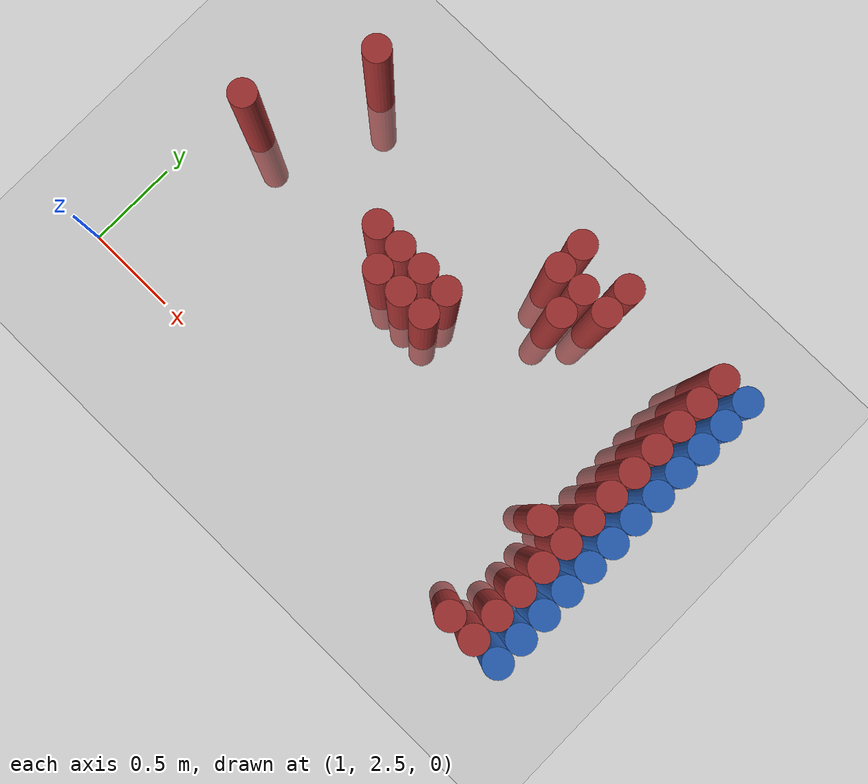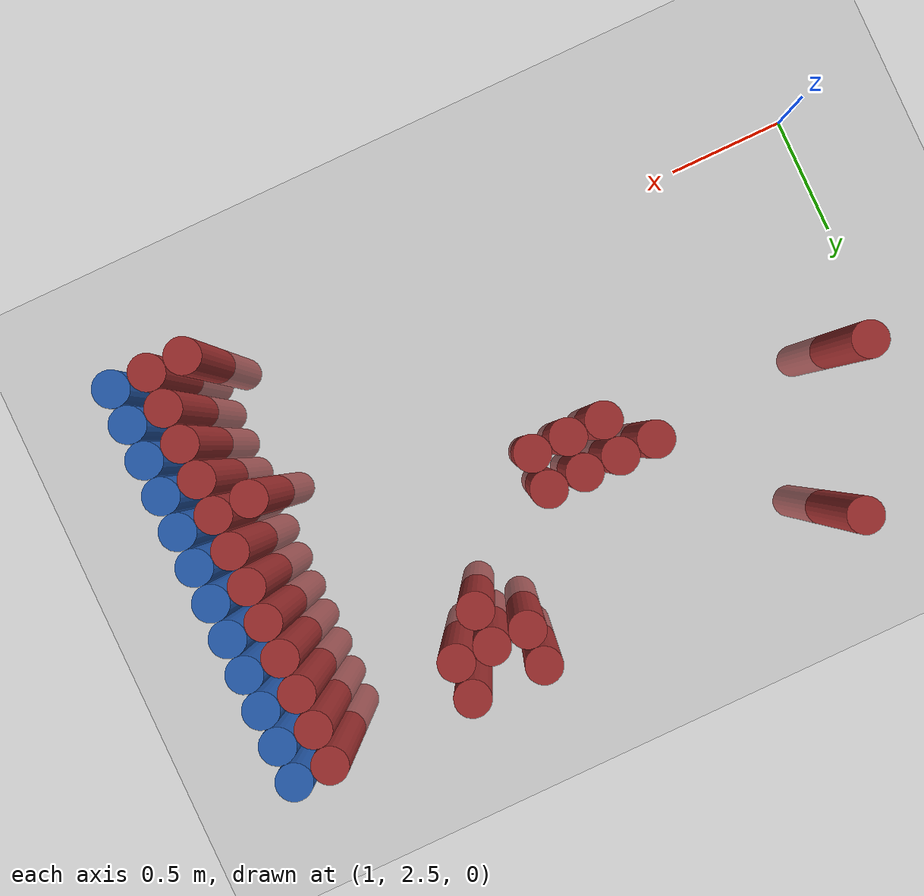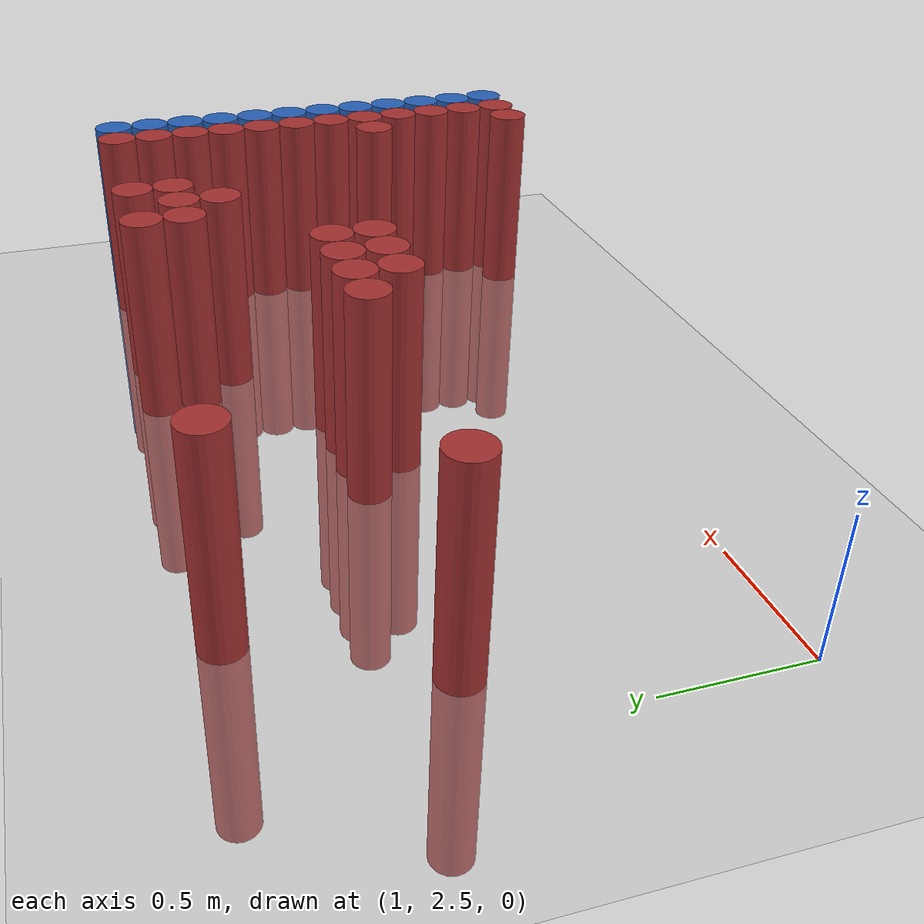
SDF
<sdf version="1.6">
 <world name="default">
  <model name="ground_plane">
   <static>1</static>
   <link name="link">
    <collision name="collision">
     <geometry><plane><normal>0 0 1</normal><size>100 100</size></plane></geometry>
     <surface><friction><ode><mu>100</mu><mu2>50</mu2></ode></friction></surface>
    </collision>
    <visual name="visual">
     <cast_shadows>0</cast_shadows>
     <geometry><plane><normal>0 0 1</normal><size>100 100</size></plane></geometry>
     <material>
      <script><uri>file://media/materials/scripts/gazebo.material</uri><name>Gazebo/Grey</name></script>
     </material>
    </visual>
   </link>
  </model>
  <model name="unit_cylinder_146">
   <static>1</static>
   <pose>3.925000 2.425000 0.000000 0.000000 0.000000 0.000000</pose>
   <link name="link">
    <inertial>
     <mass>1</mass>
     <inertia><ixx>0.145833</ixx><ixy>0</ixy><ixz>0</ixz><iyy>0.145833</iyy><iyz>0</iyz><izz>0.125</izz></inertia>
    </inertial>
    <collision name="collision">
     <geometry><cylinder><radius>0.075000</radius><length>1.5</length></cylinder></geometry>
    </collision>
    <visual name="visual">
     <geometry><cylinder><radius>0.075000</radius><length>1.5</length></cylinder></geometry>
     <material>
      <ambient>0.152000 0.379000 0.720000 1</ambient>
      <diffuse>0.152000 0.379000 0.720000 1</diffuse>
     </material>
     <material>
      <script><name>Gazebo/Grey</name><uri>file://media/materials/scripts/gazebo.material</uri></script>
     </material>
    </visual>
   </link>
  </model>
  <model name="unit_cylinder_148">
   <static>1</static>
   <pose>3.925000 2.575000 0.000000 0.000000 0.000000 0.000000</pose>
   <link name="link">
    <inertial>
     <mass>1</mass>
     <inertia><ixx>0.145833</ixx><ixy>0</ixy><ixz>0</ixz><iyy>0.145833</iyy><iyz>0</iyz><izz>0.125</izz></inertia>
    </inertial>
    <collision name="collision">
     <geometry><cylinder><radius>0.075000</radius><length>1.5</length></cylinder></geometry>
    </collision>
    <visual name="visual">
     <geometry><cylinder><radius>0.075000</radius><length>1.5</length></cylinder></geometry>
     <material>
      <ambient>0.152000 0.379000 0.720000 1</ambient>
      <diffuse>0.152000 0.379000 0.720000 1</diffuse>
     </material>
     <material>
      <script><name>Gazebo/Grey</name><uri>file://media/materials/scripts/gazebo.material</uri></script>
     </material>
    </visual>
   </link>
  </model>
  <model name="unit_cylinder_150">
   <static>1</static>
   <pose>3.925000 2.725000 0.000000 0.000000 0.000000 0.000000</pose>
   <link name="link">
    <inertial>
     <mass>1</mass>
     <inertia><ixx>0.145833</ixx><ixy>0</ixy><ixz>0</ixz><iyy>0.145833</iyy><iyz>0</iyz><izz>0.125</izz></inertia>
    </inertial>
    <collision name="collision">
     <geometry><cylinder><radius>0.075000</radius><length>1.5</length></cylinder></geometry>
    </collision>
    <visual name="visual">
     <geometry><cylinder><radius>0.075000</radius><length>1.5</length></cylinder></geometry>
     <material>
      <ambient>0.152000 0.379000 0.720000 1</ambient>
      <diffuse>0.152000 0.379000 0.720000 1</diffuse>
     </material>
     <material>
      <script><name>Gazebo/Grey</name><uri>file://media/materials/scripts/gazebo.material</uri></script>
     </material>
    </visual>
   </link>
  </model>
  <model name="unit_cylinder_152">
   <static>1</static>
   <pose>3.925000 2.875000 0.000000 0.000000 0.000000 0.000000</pose>
   <link name="link">
    <inertial>
     <mass>1</mass>
     <inertia><ixx>0.145833</ixx><ixy>0</ixy><ixz>0</ixz><iyy>0.145833</iyy><iyz>0</iyz><izz>0.125</izz></inertia>
    </inertial>
    <collision name="collision">
     <geometry><cylinder><radius>0.075000</radius><length>1.5</length></cylinder></geometry>
    </collision>
    <visual name="visual">
     <geometry><cylinder><radius>0.075000</radius><length>1.5</length></cylinder></geometry>
     <material>
      <ambient>0.152000 0.379000 0.720000 1</ambient>
      <diffuse>0.152000 0.379000 0.720000 1</diffuse>
     </material>
     <material>
      <script><name>Gazebo/Grey</name><uri>file://media/materials/scripts/gazebo.material</uri></script>
     </material>
    </visual>
   </link>
  </model>
  <model name="unit_cylinder_154">
   <static>1</static>
   <pose>3.925000 3.025000 0.000000 0.000000 0.000000 0.000000</pose>
   <link name="link">
    <inertial>
     <mass>1</mass>
     <inertia><ixx>0.145833</ixx><ixy>0</ixy><ixz>0</ixz><iyy>0.145833</iyy><iyz>0</iyz><izz>0.125</izz></inertia>
    </inertial>
    <collision name="collision">
     <geometry><cylinder><radius>0.075000</radius><length>1.5</length></cylinder></geometry>
    </collision>
    <visual name="visual">
     <geometry><cylinder><radius>0.075000</radius><length>1.5</length></cylinder></geometry>
     <material>
      <ambient>0.152000 0.379000 0.720000 1</ambient>
      <diffuse>0.152000 0.379000 0.720000 1</diffuse>
     </material>
     <material>
      <script><name>Gazebo/Grey</name><uri>file://media/materials/scripts/gazebo.material</uri></script>
     </material>
    </visual>
   </link>
  </model>
  <model name="unit_cylinder_156">
   <static>1</static>
   <pose>3.925000 3.175000 0.000000 0.000000 0.000000 0.000000</pose>
   <link name="link">
    <inertial>
     <mass>1</mass>
     <inertia><ixx>0.145833</ixx><ixy>0</ixy><ixz>0</ixz><iyy>0.145833</iyy><iyz>0</iyz><izz>0.125</izz></inertia>
    </inertial>
    <collision name="collision">
     <geometry><cylinder><radius>0.075000</radius><length>1.5</length></cylinder></geometry>
    </collision>
    <visual name="visual">
     <geometry><cylinder><radius>0.075000</radius><length>1.5</length></cylinder></geometry>
     <material>
      <ambient>0.152000 0.379000 0.720000 1</ambient>
      <diffuse>0.152000 0.379000 0.720000 1</diffuse>
     </material>
     <material>
      <script><name>Gazebo/Grey</name><uri>file://media/materials/scripts/gazebo.material</uri></script>
     </material>
    </visual>
   </link>
  </model>
  <model name="unit_cylinder_158">
   <static>1</static>
   <pose>3.925000 3.325000 0.000000 0.000000 0.000000 0.000000</pose>
   <link name="link">
    <inertial>
     <mass>1</mass>
     <inertia><ixx>0.145833</ixx><ixy>0</ixy><ixz>0</ixz><iyy>0.145833</iyy><iyz>0</iyz><izz>0.125</izz></inertia>
    </inertial>
    <collision name="collision">
     <geometry><cylinder><radius>0.075000</radius><length>1.5</length></cylinder></geometry>
    </collision>
    <visual name="visual">
     <geometry><cylinder><radius>0.075000</radius><length>1.5</length></cylinder></geometry>
     <material>
      <ambient>0.152000 0.379000 0.720000 1</ambient>
      <diffuse>0.152000 0.379000 0.720000 1</diffuse>
     </material>
     <material>
      <script><name>Gazebo/Grey</name><uri>file://media/materials/scripts/gazebo.material</uri></script>
     </material>
    </visual>
   </link>
  </model>
  <model name="unit_cylinder_160">
   <static>1</static>
   <pose>3.925000 3.475000 0.000000 0.000000 0.000000 0.000000</pose>
   <link name="link">
    <inertial>
     <mass>1</mass>
     <inertia><ixx>0.145833</ixx><ixy>0</ixy><ixz>0</ixz><iyy>0.145833</iyy><iyz>0</iyz><izz>0.125</izz></inertia>
    </inertial>
    <collision name="collision">
     <geometry><cylinder><radius>0.075000</radius><length>1.5</length></cylinder></geometry>
    </collision>
    <visual name="visual">
     <geometry><cylinder><radius>0.075000</radius><length>1.5</length></cylinder></geometry>
     <material>
      <ambient>0.152000 0.379000 0.720000 1</ambient>
      <diffuse>0.152000 0.379000 0.720000 1</diffuse>
     </material>
     <material>
      <script><name>Gazebo/Grey</name><uri>file://media/materials/scripts/gazebo.material</uri></script>
     </material>
    </visual>
   </link>
  </model>
  <model name="unit_cylinder_162">
   <static>1</static>
   <pose>3.925000 3.625000 0.000000 0.000000 0.000000 0.000000</pose>
   <link name="link">
    <inertial>
     <mass>1</mass>
     <inertia><ixx>0.145833</ixx><ixy>0</ixy><ixz>0</ixz><iyy>0.145833</iyy><iyz>0</iyz><izz>0.125</izz></inertia>
    </inertial>
    <collision name="collision">
     <geometry><cylinder><radius>0.075000</radius><length>1.5</length></cylinder></geometry>
    </collision>
    <visual name="visual">
     <geometry><cylinder><radius>0.075000</radius><length>1.5</length></cylinder></geometry>
     <material>
      <ambient>0.152000 0.379000 0.720000 1</ambient>
      <diffuse>0.152000 0.379000 0.720000 1</diffuse>
     </material>
     <material>
      <script><name>Gazebo/Grey</name><uri>file://media/materials/scripts/gazebo.material</uri></script>
     </material>
    </visual>
   </link>
  </model>
  <model name="unit_cylinder_164">
   <static>1</static>
   <pose>3.925000 3.775000 0.000000 0.000000 0.000000 0.000000</pose>
   <link name="link">
    <inertial>
     <mass>1</mass>
     <inertia><ixx>0.145833</ixx><ixy>0</ixy><ixz>0</ixz><iyy>0.145833</iyy><iyz>0</iyz><izz>0.125</izz></inertia>
    </inertial>
    <collision name="collision">
     <geometry><cylinder><radius>0.075000</radius><length>1.5</length></cylinder></geometry>
    </collision>
    <visual name="visual">
     <geometry><cylinder><radius>0.075000</radius><length>1.5</length></cylinder></geometry>
     <material>
      <ambient>0.152000 0.379000 0.720000 1</ambient>
      <diffuse>0.152000 0.379000 0.720000 1</diffuse>
     </material>
     <material>
      <script><name>Gazebo/Grey</name><uri>file://media/materials/scripts/gazebo.material</uri></script>
     </material>
    </visual>
   </link>
  </model>
  <model name="unit_cylinder_166">
   <static>1</static>
   <pose>3.925000 3.925000 0.000000 0.000000 0.000000 0.000000</pose>
   <link name="link">
    <inertial>
     <mass>1</mass>
     <inertia><ixx>0.145833</ixx><ixy>0</ixy><ixz>0</ixz><iyy>0.145833</iyy><iyz>0</iyz><izz>0.125</izz></inertia>
    </inertial>
    <collision name="collision">
     <geometry><cylinder><radius>0.075000</radius><length>1.5</length></cylinder></geometry>
    </collision>
    <visual name="visual">
     <geometry><cylinder><radius>0.075000</radius><length>1.5</length></cylinder></geometry>
     <material>
      <ambient>0.152000 0.379000 0.720000 1</ambient>
      <diffuse>0.152000 0.379000 0.720000 1</diffuse>
     </material>
     <material>
      <script><name>Gazebo/Grey</name><uri>file://media/materials/scripts/gazebo.material</uri></script>
     </material>
    </visual>
   </link>
  </model>
  <model name="unit_cylinder_168">
   <static>1</static>
   <pose>3.925000 4.075000 0.000000 0.000000 0.000000 0.000000</pose>
   <link name="link">
    <inertial>
     <mass>1</mass>
     <inertia><ixx>0.145833</ixx><ixy>0</ixy><ixz>0</ixz><iyy>0.145833</iyy><iyz>0</iyz><izz>0.125</izz></inertia>
    </inertial>
    <collision name="collision">
     <geometry><cylinder><radius>0.075000</radius><length>1.5</length></cylinder></geometry>
    </collision>
    <visual name="visual">
     <geometry><cylinder><radius>0.075000</radius><length>1.5</length></cylinder></geometry>
     <material>
      <ambient>0.152000 0.379000 0.720000 1</ambient>
      <diffuse>0.152000 0.379000 0.720000 1</diffuse>
     </material>
     <material>
      <script><name>Gazebo/Grey</name><uri>file://media/materials/scripts/gazebo.material</uri></script>
     </material>
    </visual>
   </link>
  </model>
  <model name="unit_cylinder_417">
   <static>1</static>
   <pose>1.225000 3.475000 0.000000 0.000000 0.000000 0.000000</pose>
   <link name="link">
    <inertial>
     <mass>1</mass>
     <inertia><ixx>0.145833</ixx><ixy>0</ixy><ixz>0</ixz><iyy>0.145833</iyy><iyz>0</iyz><izz>0.125</izz></inertia>
    </inertial>
    <collision name="collision">
     <geometry><cylinder><radius>0.075000</radius><length>1.5</length></cylinder></geometry>
    </collision>
    <visual name="visual">
     <geometry><cylinder><radius>0.075000</radius><length>1.5</length></cylinder></geometry>
     <material>
      <ambient>0.648000 0.192000 0.192000 1</ambient>
      <diffuse>0.648000 0.192000 0.192000 1</diffuse>
     </material>
     <material>
      <script><name>Gazebo/Grey</name><uri>file://media/materials/scripts/gazebo.material</uri></script>
     </material>
    </visual>
   </link>
  </model>
  <model name="unit_cylinder_425">
   <static>1</static>
   <pose>1.525000 4.075000 0.000000 0.000000 0.000000 0.000000</pose>
   <link name="link">
    <inertial>
     <mass>1</mass>
     <inertia><ixx>0.145833</ixx><ixy>0</ixy><ixz>0</ixz><iyy>0.145833</iyy><iyz>0</iyz><izz>0.125</izz></inertia>
    </inertial>
    <collision name="collision">
     <geometry><cylinder><radius>0.075000</radius><length>1.5</length></cylinder></geometry>
    </collision>
    <visual name="visual">
     <geometry><cylinder><radius>0.075000</radius><length>1.5</length></cylinder></geometry>
     <material>
      <ambient>0.648000 0.192000 0.192000 1</ambient>
      <diffuse>0.648000 0.192000 0.192000 1</diffuse>
     </material>
     <material>
      <script><name>Gazebo/Grey</name><uri>file://media/materials/scripts/gazebo.material</uri></script>
     </material>
    </visual>
   </link>
  </model>
  <model name="unit_cylinder_455">
   <static>1</static>
   <pose>2.125000 3.475000 0.000000 0.000000 0.000000 0.000000</pose>
   <link name="link">
    <inertial>
     <mass>1</mass>
     <inertia><ixx>0.145833</ixx><ixy>0</ixy><ixz>0</ixz><iyy>0.145833</iyy><iyz>0</iyz><izz>0.125</izz></inertia>
    </inertial>
    <collision name="collision">
     <geometry><cylinder><radius>0.075000</radius><length>1.5</length></cylinder></geometry>
    </collision>
    <visual name="visual">
     <geometry><cylinder><radius>0.075000</radius><length>1.5</length></cylinder></geometry>
     <material>
      <ambient>0.648000 0.192000 0.192000 1</ambient>
      <diffuse>0.648000 0.192000 0.192000 1</diffuse>
     </material>
     <material>
      <script><name>Gazebo/Grey</name><uri>file://media/materials/scripts/gazebo.material</uri></script>
     </material>
    </visual>
   </link>
  </model>
  <model name="unit_cylinder_457">
   <static>1</static>
   <pose>2.275000 3.325000 0.000000 0.000000 0.000000 0.000000</pose>
   <link name="link">
    <inertial>
     <mass>1</mass>
     <inertia><ixx>0.145833</ixx><ixy>0</ixy><ixz>0</ixz><iyy>0.145833</iyy><iyz>0</iyz><izz>0.125</izz></inertia>
    </inertial>
    <collision name="collision">
     <geometry><cylinder><radius>0.075000</radius><length>1.5</length></cylinder></geometry>
    </collision>
    <visual name="visual">
     <geometry><cylinder><radius>0.075000</radius><length>1.5</length></cylinder></geometry>
     <material>
      <ambient>0.648000 0.192000 0.192000 1</ambient>
      <diffuse>0.648000 0.192000 0.192000 1</diffuse>
     </material>
     <material>
      <script><name>Gazebo/Grey</name><uri>file://media/materials/scripts/gazebo.material</uri></script>
     </material>
    </visual>
   </link>
  </model>
  <model name="unit_cylinder_458">
   <static>1</static>
   <pose>2.275000 3.475000 0.000000 0.000000 0.000000 0.000000</pose>
   <link name="link">
    <inertial>
     <mass>1</mass>
     <inertia><ixx>0.145833</ixx><ixy>0</ixy><ixz>0</ixz><iyy>0.145833</iyy><iyz>0</iyz><izz>0.125</izz></inertia>
    </inertial>
    <collision name="collision">
     <geometry><cylinder><radius>0.075000</radius><length>1.5</length></cylinder></geometry>
    </collision>
    <visual name="visual">
     <geometry><cylinder><radius>0.075000</radius><length>1.5</length></cylinder></geometry>
     <material>
      <ambient>0.648000 0.192000 0.192000 1</ambient>
      <diffuse>0.648000 0.192000 0.192000 1</diffuse>
     </material>
     <material>
      <script><name>Gazebo/Grey</name><uri>file://media/materials/scripts/gazebo.material</uri></script>
     </material>
    </visual>
   </link>
  </model>
  <model name="unit_cylinder_460">
   <static>1</static>
   <pose>2.425000 3.325000 0.000000 0.000000 0.000000 0.000000</pose>
   <link name="link">
    <inertial>
     <mass>1</mass>
     <inertia><ixx>0.145833</ixx><ixy>0</ixy><ixz>0</ixz><iyy>0.145833</iyy><iyz>0</iyz><izz>0.125</izz></inertia>
    </inertial>
    <collision name="collision">
     <geometry><cylinder><radius>0.075000</radius><length>1.5</length></cylinder></geometry>
    </collision>
    <visual name="visual">
     <geometry><cylinder><radius>0.075000</radius><length>1.5</length></cylinder></geometry>
     <material>
      <ambient>0.648000 0.192000 0.192000 1</ambient>
      <diffuse>0.648000 0.192000 0.192000 1</diffuse>
     </material>
     <material>
      <script><name>Gazebo/Grey</name><uri>file://media/materials/scripts/gazebo.material</uri></script>
     </material>
    </visual>
   </link>
  </model>
  <model name="unit_cylinder_461">
   <static>1</static>
   <pose>2.425000 3.475000 0.000000 0.000000 0.000000 0.000000</pose>
   <link name="link">
    <inertial>
     <mass>1</mass>
     <inertia><ixx>0.145833</ixx><ixy>0</ixy><ixz>0</ixz><iyy>0.145833</iyy><iyz>0</iyz><izz>0.125</izz></inertia>
    </inertial>
    <collision name="collision">
     <geometry><cylinder><radius>0.075000</radius><length>1.5</length></cylinder></geometry>
    </collision>
    <visual name="visual">
     <geometry><cylinder><radius>0.075000</radius><length>1.5</length></cylinder></geometry>
     <material>
      <ambient>0.648000 0.192000 0.192000 1</ambient>
      <diffuse>0.648000 0.192000 0.192000 1</diffuse>
     </material>
     <material>
      <script><name>Gazebo/Grey</name><uri>file://media/materials/scripts/gazebo.material</uri></script>
     </material>
    </visual>
   </link>
  </model>
  <model name="unit_cylinder_468">
   <static>1</static>
   <pose>2.575000 3.325000 0.000000 0.000000 0.000000 0.000000</pose>
   <link name="link">
    <inertial>
     <mass>1</mass>
     <inertia><ixx>0.145833</ixx><ixy>0</ixy><ixz>0</ixz><iyy>0.145833</iyy><iyz>0</iyz><izz>0.125</izz></inertia>
    </inertial>
    <collision name="collision">
     <geometry><cylinder><radius>0.075000</radius><length>1.5</length></cylinder></geometry>
    </collision>
    <visual name="visual">
     <geometry><cylinder><radius>0.075000</radius><length>1.5</length></cylinder></geometry>
     <material>
      <ambient>0.648000 0.192000 0.192000 1</ambient>
      <diffuse>0.648000 0.192000 0.192000 1</diffuse>
     </material>
     <material>
      <script><name>Gazebo/Grey</name><uri>file://media/materials/scripts/gazebo.material</uri></script>
     </material>
    </visual>
   </link>
  </model>
  <model name="unit_cylinder_469">
   <static>1</static>
   <pose>2.575000 3.475000 0.000000 0.000000 0.000000 0.000000</pose>
   <link name="link">
    <inertial>
     <mass>1</mass>
     <inertia><ixx>0.145833</ixx><ixy>0</ixy><ixz>0</ixz><iyy>0.145833</iyy><iyz>0</iyz><izz>0.125</izz></inertia>
    </inertial>
    <collision name="collision">
     <geometry><cylinder><radius>0.075000</radius><length>1.5</length></cylinder></geometry>
    </collision>
    <visual name="visual">
     <geometry><cylinder><radius>0.075000</radius><length>1.5</length></cylinder></geometry>
     <material>
      <ambient>0.648000 0.192000 0.192000 1</ambient>
      <diffuse>0.648000 0.192000 0.192000 1</diffuse>
     </material>
     <material>
      <script><name>Gazebo/Grey</name><uri>file://media/materials/scripts/gazebo.material</uri></script>
     </material>
    </visual>
   </link>
  </model>
  <model name="unit_cylinder_488">
   <static>1</static>
   <pose>2.875000 3.925000 0.000000 0.000000 0.000000 0.000000</pose>
   <link name="link">
    <inertial>
     <mass>1</mass>
     <inertia><ixx>0.145833</ixx><ixy>0</ixy><ixz>0</ixz><iyy>0.145833</iyy><iyz>0</iyz><izz>0.125</izz></inertia>
    </inertial>
    <collision name="collision">
     <geometry><cylinder><radius>0.075000</radius><length>1.5</length></cylinder></geometry>
    </collision>
    <visual name="visual">
     <geometry><cylinder><radius>0.075000</radius><length>1.5</length></cylinder></geometry>
     <material>
      <ambient>0.648000 0.192000 0.192000 1</ambient>
      <diffuse>0.648000 0.192000 0.192000 1</diffuse>
     </material>
     <material>
      <script><name>Gazebo/Grey</name><uri>file://media/materials/scripts/gazebo.material</uri></script>
     </material>
    </visual>
   </link>
  </model>
  <model name="unit_cylinder_489">
   <static>1</static>
   <pose>2.875000 4.075000 0.000000 0.000000 0.000000 0.000000</pose>
   <link name="link">
    <inertial>
     <mass>1</mass>
     <inertia><ixx>0.145833</ixx><ixy>0</ixy><ixz>0</ixz><iyy>0.145833</iyy><iyz>0</iyz><izz>0.125</izz></inertia>
    </inertial>
    <collision name="collision">
     <geometry><cylinder><radius>0.075000</radius><length>1.5</length></cylinder></geometry>
    </collision>
    <visual name="visual">
     <geometry><cylinder><radius>0.075000</radius><length>1.5</length></cylinder></geometry>
     <material>
      <ambient>0.648000 0.192000 0.192000 1</ambient>
      <diffuse>0.648000 0.192000 0.192000 1</diffuse>
     </material>
     <material>
      <script><name>Gazebo/Grey</name><uri>file://media/materials/scripts/gazebo.material</uri></script>
     </material>
    </visual>
   </link>
  </model>
  <model name="unit_cylinder_502">
   <static>1</static>
   <pose>3.025000 3.775000 0.000000 0.000000 0.000000 0.000000</pose>
   <link name="link">
    <inertial>
     <mass>1</mass>
     <inertia><ixx>0.145833</ixx><ixy>0</ixy><ixz>0</ixz><iyy>0.145833</iyy><iyz>0</iyz><izz>0.125</izz></inertia>
    </inertial>
    <collision name="collision">
     <geometry><cylinder><radius>0.075000</radius><length>1.5</length></cylinder></geometry>
    </collision>
    <visual name="visual">
     <geometry><cylinder><radius>0.075000</radius><length>1.5</length></cylinder></geometry>
     <material>
      <ambient>0.648000 0.192000 0.192000 1</ambient>
      <diffuse>0.648000 0.192000 0.192000 1</diffuse>
     </material>
     <material>
      <script><name>Gazebo/Grey</name><uri>file://media/materials/scripts/gazebo.material</uri></script>
     </material>
    </visual>
   </link>
  </model>
  <model name="unit_cylinder_503">
   <static>1</static>
   <pose>3.025000 3.925000 0.000000 0.000000 0.000000 0.000000</pose>
   <link name="link">
    <inertial>
     <mass>1</mass>
     <inertia><ixx>0.145833</ixx><ixy>0</ixy><ixz>0</ixz><iyy>0.145833</iyy><iyz>0</iyz><izz>0.125</izz></inertia>
    </inertial>
    <collision name="collision">
     <geometry><cylinder><radius>0.075000</radius><length>1.5</length></cylinder></geometry>
    </collision>
    <visual name="visual">
     <geometry><cylinder><radius>0.075000</radius><length>1.5</length></cylinder></geometry>
     <material>
      <ambient>0.648000 0.192000 0.192000 1</ambient>
      <diffuse>0.648000 0.192000 0.192000 1</diffuse>
     </material>
     <material>
      <script><name>Gazebo/Grey</name><uri>file://media/materials/scripts/gazebo.material</uri></script>
     </material>
    </visual>
   </link>
  </model>
  <model name="unit_cylinder_514">
   <static>1</static>
   <pose>3.175000 3.925000 0.000000 0.000000 0.000000 0.000000</pose>
   <link name="link">
    <inertial>
     <mass>1</mass>
     <inertia><ixx>0.145833</ixx><ixy>0</ixy><ixz>0</ixz><iyy>0.145833</iyy><iyz>0</iyz><izz>0.125</izz></inertia>
    </inertial>
    <collision name="collision">
     <geometry><cylinder><radius>0.075000</radius><length>1.5</length></cylinder></geometry>
    </collision>
    <visual name="visual">
     <geometry><cylinder><radius>0.075000</radius><length>1.5</length></cylinder></geometry>
     <material>
      <ambient>0.648000 0.192000 0.192000 1</ambient>
      <diffuse>0.648000 0.192000 0.192000 1</diffuse>
     </material>
     <material>
      <script><name>Gazebo/Grey</name><uri>file://media/materials/scripts/gazebo.material</uri></script>
     </material>
    </visual>
   </link>
  </model>
  <model name="unit_cylinder_515">
   <static>1</static>
   <pose>3.175000 4.075000 0.000000 0.000000 0.000000 0.000000</pose>
   <link name="link">
    <inertial>
     <mass>1</mass>
     <inertia><ixx>0.145833</ixx><ixy>0</ixy><ixz>0</ixz><iyy>0.145833</iyy><iyz>0</iyz><izz>0.125</izz></inertia>
    </inertial>
    <collision name="collision">
     <geometry><cylinder><radius>0.075000</radius><length>1.5</length></cylinder></geometry>
    </collision>
    <visual name="visual">
     <geometry><cylinder><radius>0.075000</radius><length>1.5</length></cylinder></geometry>
     <material>
      <ambient>0.648000 0.192000 0.192000 1</ambient>
      <diffuse>0.648000 0.192000 0.192000 1</diffuse>
     </material>
     <material>
      <script><name>Gazebo/Grey</name><uri>file://media/materials/scripts/gazebo.material</uri></script>
     </material>
    </visual>
   </link>
  </model>
  <model name="unit_cylinder_541">
   <static>1</static>
   <pose>3.625000 2.425000 0.000000 0.000000 0.000000 0.000000</pose>
   <link name="link">
    <inertial>
     <mass>1</mass>
     <inertia><ixx>0.145833</ixx><ixy>0</ixy><ixz>0</ixz><iyy>0.145833</iyy><iyz>0</iyz><izz>0.125</izz></inertia>
    </inertial>
    <collision name="collision">
     <geometry><cylinder><radius>0.075000</radius><length>1.5</length></cylinder></geometry>
    </collision>
    <visual name="visual">
     <geometry><cylinder><radius>0.075000</radius><length>1.5</length></cylinder></geometry>
     <material>
      <ambient>0.648000 0.192000 0.192000 1</ambient>
      <diffuse>0.648000 0.192000 0.192000 1</diffuse>
     </material>
     <material>
      <script><name>Gazebo/Grey</name><uri>file://media/materials/scripts/gazebo.material</uri></script>
     </material>
    </visual>
   </link>
  </model>
  <model name="unit_cylinder_542">
   <static>1</static>
   <pose>3.625000 3.025000 0.000000 0.000000 0.000000 0.000000</pose>
   <link name="link">
    <inertial>
     <mass>1</mass>
     <inertia><ixx>0.145833</ixx><ixy>0</ixy><ixz>0</ixz><iyy>0.145833</iyy><iyz>0</iyz><izz>0.125</izz></inertia>
    </inertial>
    <collision name="collision">
     <geometry><cylinder><radius>0.075000</radius><length>1.5</length></cylinder></geometry>
    </collision>
    <visual name="visual">
     <geometry><cylinder><radius>0.075000</radius><length>1.5</length></cylinder></geometry>
     <material>
      <ambient>0.648000 0.192000 0.192000 1</ambient>
      <diffuse>0.648000 0.192000 0.192000 1</diffuse>
     </material>
     <material>
      <script><name>Gazebo/Grey</name><uri>file://media/materials/scripts/gazebo.material</uri></script>
     </material>
    </visual>
   </link>
  </model>
  <model name="unit_cylinder_557">
   <static>1</static>
   <pose>3.775000 2.425000 0.000000 0.000000 0.000000 0.000000</pose>
   <link name="link">
    <inertial>
     <mass>1</mass>
     <inertia><ixx>0.145833</ixx><ixy>0</ixy><ixz>0</ixz><iyy>0.145833</iyy><iyz>0</iyz><izz>0.125</izz></inertia>
    </inertial>
    <collision name="collision">
     <geometry><cylinder><radius>0.075000</radius><length>1.5</length></cylinder></geometry>
    </collision>
    <visual name="visual">
     <geometry><cylinder><radius>0.075000</radius><length>1.5</length></cylinder></geometry>
     <material>
      <ambient>0.648000 0.192000 0.192000 1</ambient>
      <diffuse>0.648000 0.192000 0.192000 1</diffuse>
     </material>
     <material>
      <script><name>Gazebo/Grey</name><uri>file://media/materials/scripts/gazebo.material</uri></script>
     </material>
    </visual>
   </link>
  </model>
  <model name="unit_cylinder_558">
   <static>1</static>
   <pose>3.775000 2.575000 0.000000 0.000000 0.000000 0.000000</pose>
   <link name="link">
    <inertial>
     <mass>1</mass>
     <inertia><ixx>0.145833</ixx><ixy>0</ixy><ixz>0</ixz><iyy>0.145833</iyy><iyz>0</iyz><izz>0.125</izz></inertia>
    </inertial>
    <collision name="collision">
     <geometry><cylinder><radius>0.075000</radius><length>1.5</length></cylinder></geometry>
    </collision>
    <visual name="visual">
     <geometry><cylinder><radius>0.075000</radius><length>1.5</length></cylinder></geometry>
     <material>
      <ambient>0.648000 0.192000 0.192000 1</ambient>
      <diffuse>0.648000 0.192000 0.192000 1</diffuse>
     </material>
     <material>
      <script><name>Gazebo/Grey</name><uri>file://media/materials/scripts/gazebo.material</uri></script>
     </material>
    </visual>
   </link>
  </model>
  <model name="unit_cylinder_559">
   <static>1</static>
   <pose>3.775000 2.725000 0.000000 0.000000 0.000000 0.000000</pose>
   <link name="link">
    <inertial>
     <mass>1</mass>
     <inertia><ixx>0.145833</ixx><ixy>0</ixy><ixz>0</ixz><iyy>0.145833</iyy><iyz>0</iyz><izz>0.125</izz></inertia>
    </inertial>
    <collision name="collision">
     <geometry><cylinder><radius>0.075000</radius><length>1.5</length></cylinder></geometry>
    </collision>
    <visual name="visual">
     <geometry><cylinder><radius>0.075000</radius><length>1.5</length></cylinder></geometry>
     <material>
      <ambient>0.648000 0.192000 0.192000 1</ambient>
      <diffuse>0.648000 0.192000 0.192000 1</diffuse>
     </material>
     <material>
      <script><name>Gazebo/Grey</name><uri>file://media/materials/scripts/gazebo.material</uri></script>
     </material>
    </visual>
   </link>
  </model>
  <model name="unit_cylinder_560">
   <static>1</static>
   <pose>3.775000 2.875000 0.000000 0.000000 0.000000 0.000000</pose>
   <link name="link">
    <inertial>
     <mass>1</mass>
     <inertia><ixx>0.145833</ixx><ixy>0</ixy><ixz>0</ixz><iyy>0.145833</iyy><iyz>0</iyz><izz>0.125</izz></inertia>
    </inertial>
    <collision name="collision">
     <geometry><cylinder><radius>0.075000</radius><length>1.5</length></cylinder></geometry>
    </collision>
    <visual name="visual">
     <geometry><cylinder><radius>0.075000</radius><length>1.5</length></cylinder></geometry>
     <material>
      <ambient>0.648000 0.192000 0.192000 1</ambient>
      <diffuse>0.648000 0.192000 0.192000 1</diffuse>
     </material>
     <material>
      <script><name>Gazebo/Grey</name><uri>file://media/materials/scripts/gazebo.material</uri></script>
     </material>
    </visual>
   </link>
  </model>
  <model name="unit_cylinder_561">
   <static>1</static>
   <pose>3.775000 3.025000 0.000000 0.000000 0.000000 0.000000</pose>
   <link name="link">
    <inertial>
     <mass>1</mass>
     <inertia><ixx>0.145833</ixx><ixy>0</ixy><ixz>0</ixz><iyy>0.145833</iyy><iyz>0</iyz><izz>0.125</izz></inertia>
    </inertial>
    <collision name="collision">
     <geometry><cylinder><radius>0.075000</radius><length>1.5</length></cylinder></geometry>
    </collision>
    <visual name="visual">
     <geometry><cylinder><radius>0.075000</radius><length>1.5</length></cylinder></geometry>
     <material>
      <ambient>0.648000 0.192000 0.192000 1</ambient>
      <diffuse>0.648000 0.192000 0.192000 1</diffuse>
     </material>
     <material>
      <script><name>Gazebo/Grey</name><uri>file://media/materials/scripts/gazebo.material</uri></script>
     </material>
    </visual>
   </link>
  </model>
  <model name="unit_cylinder_562">
   <static>1</static>
   <pose>3.775000 3.175000 0.000000 0.000000 0.000000 0.000000</pose>
   <link name="link">
    <inertial>
     <mass>1</mass>
     <inertia><ixx>0.145833</ixx><ixy>0</ixy><ixz>0</ixz><iyy>0.145833</iyy><iyz>0</iyz><izz>0.125</izz></inertia>
    </inertial>
    <collision name="collision">
     <geometry><cylinder><radius>0.075000</radius><length>1.5</length></cylinder></geometry>
    </collision>
    <visual name="visual">
     <geometry><cylinder><radius>0.075000</radius><length>1.5</length></cylinder></geometry>
     <material>
      <ambient>0.648000 0.192000 0.192000 1</ambient>
      <diffuse>0.648000 0.192000 0.192000 1</diffuse>
     </material>
     <material>
      <script><name>Gazebo/Grey</name><uri>file://media/materials/scripts/gazebo.material</uri></script>
     </material>
    </visual>
   </link>
  </model>
  <model name="unit_cylinder_563">
   <static>1</static>
   <pose>3.775000 3.325000 0.000000 0.000000 0.000000 0.000000</pose>
   <link name="link">
    <inertial>
     <mass>1</mass>
     <inertia><ixx>0.145833</ixx><ixy>0</ixy><ixz>0</ixz><iyy>0.145833</iyy><iyz>0</iyz><izz>0.125</izz></inertia>
    </inertial>
    <collision name="collision">
     <geometry><cylinder><radius>0.075000</radius><length>1.5</length></cylinder></geometry>
    </collision>
    <visual name="visual">
     <geometry><cylinder><radius>0.075000</radius><length>1.5</length></cylinder></geometry>
     <material>
      <ambient>0.648000 0.192000 0.192000 1</ambient>
      <diffuse>0.648000 0.192000 0.192000 1</diffuse>
     </material>
     <material>
      <script><name>Gazebo/Grey</name><uri>file://media/materials/scripts/gazebo.material</uri></script>
     </material>
    </visual>
   </link>
  </model>
  <model name="unit_cylinder_564">
   <static>1</static>
   <pose>3.775000 3.475000 0.000000 0.000000 0.000000 0.000000</pose>
   <link name="link">
    <inertial>
     <mass>1</mass>
     <inertia><ixx>0.145833</ixx><ixy>0</ixy><ixz>0</ixz><iyy>0.145833</iyy><iyz>0</iyz><izz>0.125</izz></inertia>
    </inertial>
    <collision name="collision">
     <geometry><cylinder><radius>0.075000</radius><length>1.5</length></cylinder></geometry>
    </collision>
    <visual name="visual">
     <geometry><cylinder><radius>0.075000</radius><length>1.5</length></cylinder></geometry>
     <material>
      <ambient>0.648000 0.192000 0.192000 1</ambient>
      <diffuse>0.648000 0.192000 0.192000 1</diffuse>
     </material>
     <material>
      <script><name>Gazebo/Grey</name><uri>file://media/materials/scripts/gazebo.material</uri></script>
     </material>
    </visual>
   </link>
  </model>
  <model name="unit_cylinder_565">
   <static>1</static>
   <pose>3.775000 3.625000 0.000000 0.000000 0.000000 0.000000</pose>
   <link name="link">
    <inertial>
     <mass>1</mass>
     <inertia><ixx>0.145833</ixx><ixy>0</ixy><ixz>0</ixz><iyy>0.145833</iyy><iyz>0</iyz><izz>0.125</izz></inertia>
    </inertial>
    <collision name="collision">
     <geometry><cylinder><radius>0.075000</radius><length>1.5</length></cylinder></geometry>
    </collision>
    <visual name="visual">
     <geometry><cylinder><radius>0.075000</radius><length>1.5</length></cylinder></geometry>
     <material>
      <ambient>0.648000 0.192000 0.192000 1</ambient>
      <diffuse>0.648000 0.192000 0.192000 1</diffuse>
     </material>
     <material>
      <script><name>Gazebo/Grey</name><uri>file://media/materials/scripts/gazebo.material</uri></script>
     </material>
    </visual>
   </link>
  </model>
  <model name="unit_cylinder_566">
   <static>1</static>
   <pose>3.775000 3.775000 0.000000 0.000000 0.000000 0.000000</pose>
   <link name="link">
    <inertial>
     <mass>1</mass>
     <inertia><ixx>0.145833</ixx><ixy>0</ixy><ixz>0</ixz><iyy>0.145833</iyy><iyz>0</iyz><izz>0.125</izz></inertia>
    </inertial>
    <collision name="collision">
     <geometry><cylinder><radius>0.075000</radius><length>1.5</length></cylinder></geometry>
    </collision>
    <visual name="visual">
     <geometry><cylinder><radius>0.075000</radius><length>1.5</length></cylinder></geometry>
     <material>
      <ambient>0.648000 0.192000 0.192000 1</ambient>
      <diffuse>0.648000 0.192000 0.192000 1</diffuse>
     </material>
     <material>
      <script><name>Gazebo/Grey</name><uri>file://media/materials/scripts/gazebo.material</uri></script>
     </material>
    </visual>
   </link>
  </model>
  <model name="unit_cylinder_567">
   <static>1</static>
   <pose>3.775000 3.925000 0.000000 0.000000 0.000000 0.000000</pose>
   <link name="link">
    <inertial>
     <mass>1</mass>
     <inertia><ixx>0.145833</ixx><ixy>0</ixy><ixz>0</ixz><iyy>0.145833</iyy><iyz>0</iyz><izz>0.125</izz></inertia>
    </inertial>
    <collision name="collision">
     <geometry><cylinder><radius>0.075000</radius><length>1.5</length></cylinder></geometry>
    </collision>
    <visual name="visual">
     <geometry><cylinder><radius>0.075000</radius><length>1.5</length></cylinder></geometry>
     <material>
      <ambient>0.648000 0.192000 0.192000 1</ambient>
      <diffuse>0.648000 0.192000 0.192000 1</diffuse>
     </material>
     <material>
      <script><name>Gazebo/Grey</name><uri>file://media/materials/scripts/gazebo.material</uri></script>
     </material>
    </visual>
   </link>
  </model>
  <model name="unit_cylinder_568">
   <static>1</static>
   <pose>3.775000 4.075000 0.000000 0.000000 0.000000 0.000000</pose>
   <link name="link">
    <inertial>
     <mass>1</mass>
     <inertia><ixx>0.145833</ixx><ixy>0</ixy><ixz>0</ixz><iyy>0.145833</iyy><iyz>0</iyz><izz>0.125</izz></inertia>
    </inertial>
    <collision name="collision">
     <geometry><cylinder><radius>0.075000</radius><length>1.5</length></cylinder></geometry>
    </collision>
    <visual name="visual">
     <geometry><cylinder><radius>0.075000</radius><length>1.5</length></cylinder></geometry>
     <material>
      <ambient>0.648000 0.192000 0.192000 1</ambient>
      <diffuse>0.648000 0.192000 0.192000 1</diffuse>
     </material>
     <material>
      <script><name>Gazebo/Grey</name><uri>file://media/materials/scripts/gazebo.material</uri></script>
     </material>
    </visual>
   </link>
  </model>
  <model name="unit_cylinder_604">
   <static>1</static>
   <pose>3.925000 2.425000 0.000000 0.000000 0.000000 0.000000</pose>
   <link name="link">
    <inertial>
     <mass>1</mass>
     <inertia><ixx>0.145833</ixx><ixy>0</ixy><ixz>0</ixz><iyy>0.145833</iyy><iyz>0</iyz><izz>0.125</izz></inertia>
    </inertial>
    <collision name="collision">
     <geometry><cylinder><radius>0.075000</radius><length>1.5</length></cylinder></geometry>
    </collision>
    <visual name="visual">
     <geometry><cylinder><radius>0.075000</radius><length>1.5</length></cylinder></geometry>
     <material>
      <ambient>0.152000 0.379000 0.720000 1</ambient>
      <diffuse>0.152000 0.379000 0.720000 1</diffuse>
     </material>
     <material>
      <script><name>Gazebo/Grey</name><uri>file://media/materials/scripts/gazebo.material</uri></script>
     </material>
    </visual>
   </link>
  </model>
  <model name="unit_cylinder_605">
   <static>1</static>
   <pose>3.925000 2.575000 0.000000 0.000000 0.000000 0.000000</pose>
   <link name="link">
    <inertial>
     <mass>1</mass>
     <inertia><ixx>0.145833</ixx><ixy>0</ixy><ixz>0</ixz><iyy>0.145833</iyy><iyz>0</iyz><izz>0.125</izz></inertia>
    </inertial>
    <collision name="collision">
     <geometry><cylinder><radius>0.075000</radius><length>1.5</length></cylinder></geometry>
    </collision>
    <visual name="visual">
     <geometry><cylinder><radius>0.075000</radius><length>1.5</length></cylinder></geometry>
     <material>
      <ambient>0.152000 0.379000 0.720000 1</ambient>
      <diffuse>0.152000 0.379000 0.720000 1</diffuse>
     </material>
     <material>
      <script><name>Gazebo/Grey</name><uri>file://media/materials/scripts/gazebo.material</uri></script>
     </material>
    </visual>
   </link>
  </model>
  <model name="unit_cylinder_606">
   <static>1</static>
   <pose>3.925000 2.725000 0.000000 0.000000 0.000000 0.000000</pose>
   <link name="link">
    <inertial>
     <mass>1</mass>
     <inertia><ixx>0.145833</ixx><ixy>0</ixy><ixz>0</ixz><iyy>0.145833</iyy><iyz>0</iyz><izz>0.125</izz></inertia>
    </inertial>
    <collision name="collision">
     <geometry><cylinder><radius>0.075000</radius><length>1.5</length></cylinder></geometry>
    </collision>
    <visual name="visual">
     <geometry><cylinder><radius>0.075000</radius><length>1.5</length></cylinder></geometry>
     <material>
      <ambient>0.152000 0.379000 0.720000 1</ambient>
      <diffuse>0.152000 0.379000 0.720000 1</diffuse>
     </material>
     <material>
      <script><name>Gazebo/Grey</name><uri>file://media/materials/scripts/gazebo.material</uri></script>
     </material>
    </visual>
   </link>
  </model>
  <model name="unit_cylinder_607">
   <static>1</static>
   <pose>3.925000 2.875000 0.000000 0.000000 0.000000 0.000000</pose>
   <link name="link">
    <inertial>
     <mass>1</mass>
     <inertia><ixx>0.145833</ixx><ixy>0</ixy><ixz>0</ixz><iyy>0.145833</iyy><iyz>0</iyz><izz>0.125</izz></inertia>
    </inertial>
    <collision name="collision">
     <geometry><cylinder><radius>0.075000</radius><length>1.5</length></cylinder></geometry>
    </collision>
    <visual name="visual">
     <geometry><cylinder><radius>0.075000</radius><length>1.5</length></cylinder></geometry>
     <material>
      <ambient>0.152000 0.379000 0.720000 1</ambient>
      <diffuse>0.152000 0.379000 0.720000 1</diffuse>
     </material>
     <material>
      <script><name>Gazebo/Grey</name><uri>file://media/materials/scripts/gazebo.material</uri></script>
     </material>
    </visual>
   </link>
  </model>
  <model name="unit_cylinder_608">
   <static>1</static>
   <pose>3.925000 3.025000 0.000000 0.000000 0.000000 0.000000</pose>
   <link name="link">
    <inertial>
     <mass>1</mass>
     <inertia><ixx>0.145833</ixx><ixy>0</ixy><ixz>0</ixz><iyy>0.145833</iyy><iyz>0</iyz><izz>0.125</izz></inertia>
    </inertial>
    <collision name="collision">
     <geometry><cylinder><radius>0.075000</radius><length>1.5</length></cylinder></geometry>
    </collision>
    <visual name="visual">
     <geometry><cylinder><radius>0.075000</radius><length>1.5</length></cylinder></geometry>
     <material>
      <ambient>0.152000 0.379000 0.720000 1</ambient>
      <diffuse>0.152000 0.379000 0.720000 1</diffuse>
     </material>
     <material>
      <script><name>Gazebo/Grey</name><uri>file://media/materials/scripts/gazebo.material</uri></script>
     </material>
    </visual>
   </link>
  </model>
  <model name="unit_cylinder_609">
   <static>1</static>
   <pose>3.925000 3.175000 0.000000 0.000000 0.000000 0.000000</pose>
   <link name="link">
    <inertial>
     <mass>1</mass>
     <inertia><ixx>0.145833</ixx><ixy>0</ixy><ixz>0</ixz><iyy>0.145833</iyy><iyz>0</iyz><izz>0.125</izz></inertia>
    </inertial>
    <collision name="collision">
     <geometry><cylinder><radius>0.075000</radius><length>1.5</length></cylinder></geometry>
    </collision>
    <visual name="visual">
     <geometry><cylinder><radius>0.075000</radius><length>1.5</length></cylinder></geometry>
     <material>
      <ambient>0.152000 0.379000 0.720000 1</ambient>
      <diffuse>0.152000 0.379000 0.720000 1</diffuse>
     </material>
     <material>
      <script><name>Gazebo/Grey</name><uri>file://media/materials/scripts/gazebo.material</uri></script>
     </material>
    </visual>
   </link>
  </model>
  <model name="unit_cylinder_610">
   <static>1</static>
   <pose>3.925000 3.325000 0.000000 0.000000 0.000000 0.000000</pose>
   <link name="link">
    <inertial>
     <mass>1</mass>
     <inertia><ixx>0.145833</ixx><ixy>0</ixy><ixz>0</ixz><iyy>0.145833</iyy><iyz>0</iyz><izz>0.125</izz></inertia>
    </inertial>
    <collision name="collision">
     <geometry><cylinder><radius>0.075000</radius><length>1.5</length></cylinder></geometry>
    </collision>
    <visual name="visual">
     <geometry><cylinder><radius>0.075000</radius><length>1.5</length></cylinder></geometry>
     <material>
      <ambient>0.152000 0.379000 0.720000 1</ambient>
      <diffuse>0.152000 0.379000 0.720000 1</diffuse>
     </material>
     <material>
      <script><name>Gazebo/Grey</name><uri>file://media/materials/scripts/gazebo.material</uri></script>
     </material>
    </visual>
   </link>
  </model>
  <model name="unit_cylinder_611">
   <static>1</static>
   <pose>3.925000 3.475000 0.000000 0.000000 0.000000 0.000000</pose>
   <link name="link">
    <inertial>
     <mass>1</mass>
     <inertia><ixx>0.145833</ixx><ixy>0</ixy><ixz>0</ixz><iyy>0.145833</iyy><iyz>0</iyz><izz>0.125</izz></inertia>
    </inertial>
    <collision name="collision">
     <geometry><cylinder><radius>0.075000</radius><length>1.5</length></cylinder></geometry>
    </collision>
    <visual name="visual">
     <geometry><cylinder><radius>0.075000</radius><length>1.5</length></cylinder></geometry>
     <material>
      <ambient>0.152000 0.379000 0.720000 1</ambient>
      <diffuse>0.152000 0.379000 0.720000 1</diffuse>
     </material>
     <material>
      <script><name>Gazebo/Grey</name><uri>file://media/materials/scripts/gazebo.material</uri></script>
     </material>
    </visual>
   </link>
  </model>
  <model name="unit_cylinder_612">
   <static>1</static>
   <pose>3.925000 3.625000 0.000000 0.000000 0.000000 0.000000</pose>
   <link name="link">
    <inertial>
     <mass>1</mass>
     <inertia><ixx>0.145833</ixx><ixy>0</ixy><ixz>0</ixz><iyy>0.145833</iyy><iyz>0</iyz><izz>0.125</izz></inertia>
    </inertial>
    <collision name="collision">
     <geometry><cylinder><radius>0.075000</radius><length>1.5</length></cylinder></geometry>
    </collision>
    <visual name="visual">
     <geometry><cylinder><radius>0.075000</radius><length>1.5</length></cylinder></geometry>
     <material>
      <ambient>0.152000 0.379000 0.720000 1</ambient>
      <diffuse>0.152000 0.379000 0.720000 1</diffuse>
     </material>
     <material>
      <script><name>Gazebo/Grey</name><uri>file://media/materials/scripts/gazebo.material</uri></script>
     </material>
    </visual>
   </link>
  </model>
  <model name="unit_cylinder_613">
   <static>1</static>
   <pose>3.925000 3.775000 0.000000 0.000000 0.000000 0.000000</pose>
   <link name="link">
    <inertial>
     <mass>1</mass>
     <inertia><ixx>0.145833</ixx><ixy>0</ixy><ixz>0</ixz><iyy>0.145833</iyy><iyz>0</iyz><izz>0.125</izz></inertia>
    </inertial>
    <collision name="collision">
     <geometry><cylinder><radius>0.075000</radius><length>1.5</length></cylinder></geometry>
    </collision>
    <visual name="visual">
     <geometry><cylinder><radius>0.075000</radius><length>1.5</length></cylinder></geometry>
     <material>
      <ambient>0.152000 0.379000 0.720000 1</ambient>
      <diffuse>0.152000 0.379000 0.720000 1</diffuse>
     </material>
     <material>
      <script><name>Gazebo/Grey</name><uri>file://media/materials/scripts/gazebo.material</uri></script>
     </material>
    </visual>
   </link>
  </model>
  <model name="unit_cylinder_614">
   <static>1</static>
   <pose>3.925000 3.925000 0.000000 0.000000 0.000000 0.000000</pose>
   <link name="link">
    <inertial>
     <mass>1</mass>
     <inertia><ixx>0.145833</ixx><ixy>0</ixy><ixz>0</ixz><iyy>0.145833</iyy><iyz>0</iyz><izz>0.125</izz></inertia>
    </inertial>
    <collision name="collision">
     <geometry><cylinder><radius>0.075000</radius><length>1.5</length></cylinder></geometry>
    </collision>
    <visual name="visual">
     <geometry><cylinder><radius>0.075000</radius><length>1.5</length></cylinder></geometry>
     <material>
      <ambient>0.152000 0.379000 0.720000 1</ambient>
      <diffuse>0.152000 0.379000 0.720000 1</diffuse>
     </material>
     <material>
      <script><name>Gazebo/Grey</name><uri>file://media/materials/scripts/gazebo.material</uri></script>
     </material>
    </visual>
   </link>
  </model>
 </world>
</sdf>
